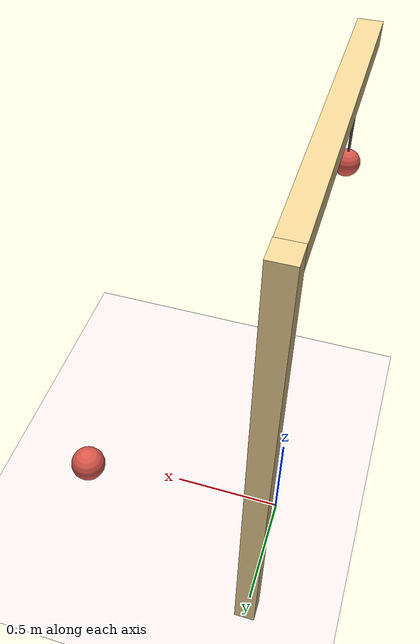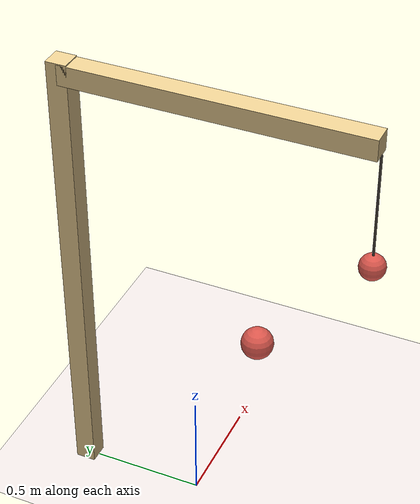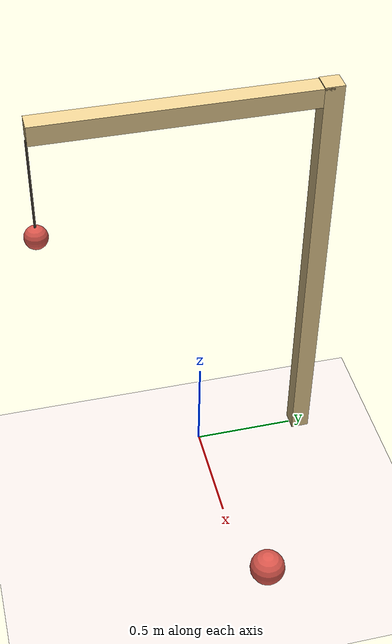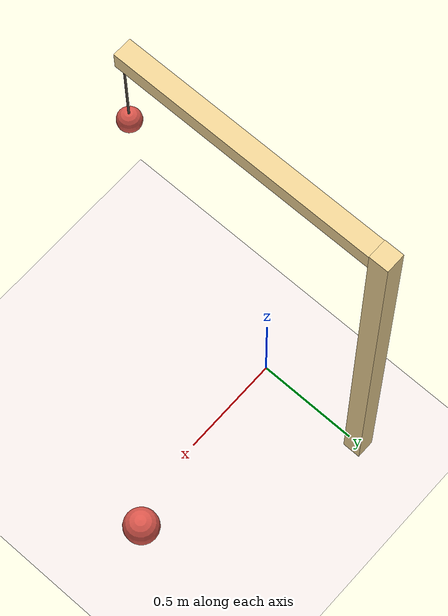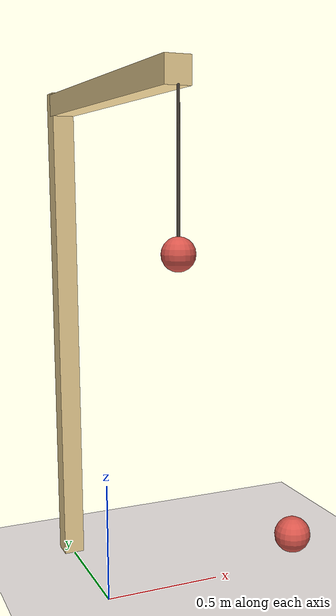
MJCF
<mujoco model="conical_pendulum">
  <compiler angle="radian" coordinate="local" autolimits="true"/>
  <option timestep="0.001" gravity="0 0 -9.81" integrator="implicitfast"/>

  <visual>
    <headlight diffuse="0 0 0" ambient="0.50 0.48 0.55" specular="0 0 0"/>
    <rgba haze="0.94 0.91 0.90 1"/>
    <global azimuth="120" elevation="-15" offwidth="1920" offheight="1080" fovy="40"/>
    <quality shadowsize="8192" offsamples="8"/>
    <map shadowclip="5" shadowscale="0.7"/>
  </visual>

  <asset>
    <texture type="skybox" builtin="flat"
             rgb1="0.74 0.68 0.86" rgb2="0.74 0.68 0.86"
             width="512" height="512" mark="none" markrgb="0 0 0"/>

    <material name="floor_mat" rgba="0.94 0.91 0.90 1" specular="0" shininess="0"/>
    <material name="wood"      rgba="0.93 0.82 0.58 1" specular="0.1" shininess="0.1"/>
    <material name="bob_red"   rgba="0.86 0.34 0.30 1" specular="0.4" shininess="0.5"/>
    <material name="string_mat" rgba="0.28 0.25 0.22 1" specular="0" shininess="0"/>
  </asset>

  <worldbody>
    <light pos="0 0 12" dir="-0.35 0.55 -1" directional="true" castshadow="true"
           diffuse="0.85 0.82 0.78" specular="0.15 0.15 0.15"/>
    <light pos="0 0 8" dir="0.45 -0.30 -1" directional="true" castshadow="false"
           diffuse="0.30 0.30 0.36" specular="0 0 0"/>

    <geom name="floor" type="plane" size="40 40 0.1" material="floor_mat"/>

    <!-- L-shaped wooden stand, identical to pendulum.xml. -->
    <geom type="box" size="0.045 0.045 1.05"
          pos="0 0.55 1.05" material="wood"/>
    <geom type="box" size="0.045 0.65 0.045"
          pos="0 -0.10 2.05" material="wood"/>

    <body name="yaw_frame" pos="0 -0.75 2.005">
      <joint name="yaw" type="hinge" axis="0 0 1" damping="0.0005"/>
      <!-- Massless-ish placeholder so the yaw frame has inertia. -->
      <geom name="yaw_hub" type="sphere" size="0.0015" mass="0.0001"
            rgba="0.28 0.25 0.22 1" contype="0" conaffinity="0"/>

      <body name="pendulum">
        <joint name="tilt" type="hinge" axis="0 1 0" damping="0.0005"/>
        <geom name="rod" type="capsule" fromto="0 0 0   0 0 -0.50"
              size="0.005" material="string_mat"
              contype="0" conaffinity="0"/>
        <geom name="bob" type="sphere" pos="0 0 -0.50" size="0.055"
              mass="0.15" material="bob_red"
              contype="0" conaffinity="0"/>
      </body>
    </body>

    <!-- Decorative small ball, sister visual to pendulum.xml's. -->
    <geom type="sphere" pos="0.95 0.10 0.085" size="0.085" material="bob_red"/>

    <!-- Camera: 3/4 front-right, framing the bob's orbital plane. -->
    <camera name="cam" pos="1.5 -3.5 2.2" fovy="40"
            xyaxes="0.878 0.479 0   -0.097 0.178 0.979"/>
  </worldbody>
</mujoco>
